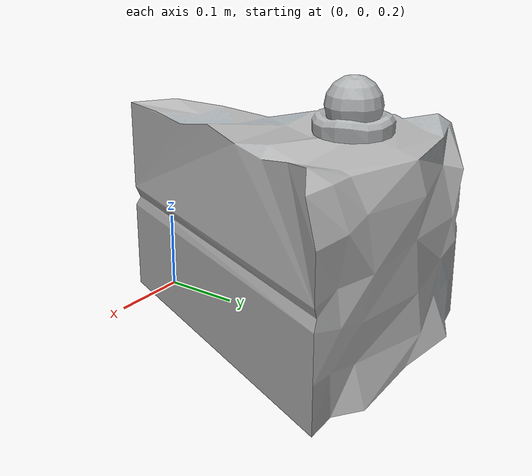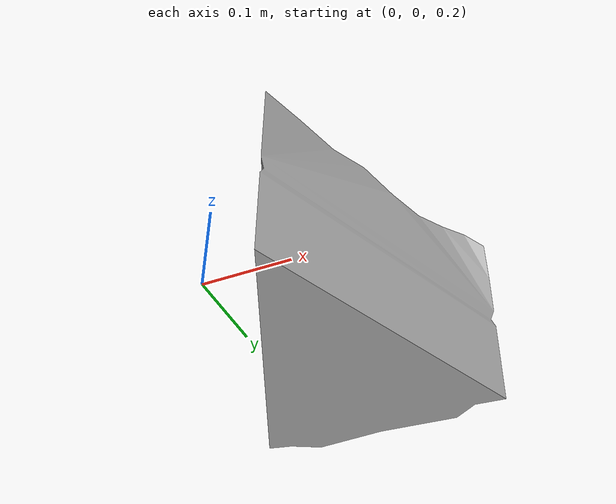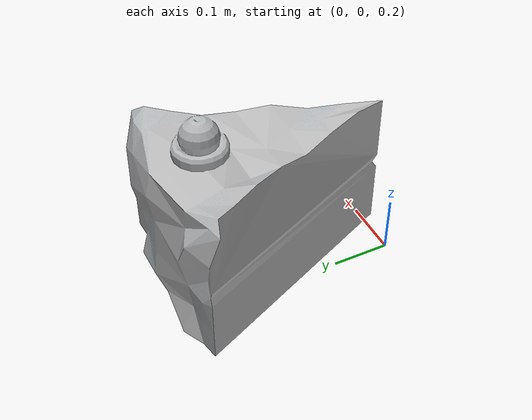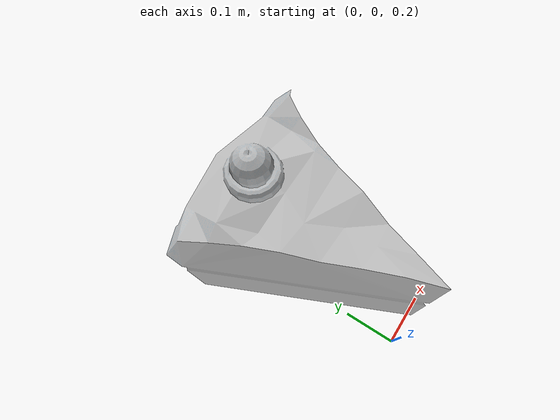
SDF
<?xml version="1.0" ?>
<sdf version="1.5">
  <model name="Cake Slice">
    <link name="link">
      <collision name="collision">
        <geometry>
          <mesh>
            <uri>model://cake/meshes/model.dae</uri>
          </mesh>
        </geometry>
      </collision>
      <visual name="visual">
        <geometry>
          <mesh>
            <uri>model://cake/meshes/model.dae</uri>
          </mesh>
        </geometry>
        <material>
          <mesh>
            <uri>model://cake/meshes/model</uri>
          </mesh>
        </material>
      </visual>
    </link>
    <static>1</static>
  </model>
</sdf>
